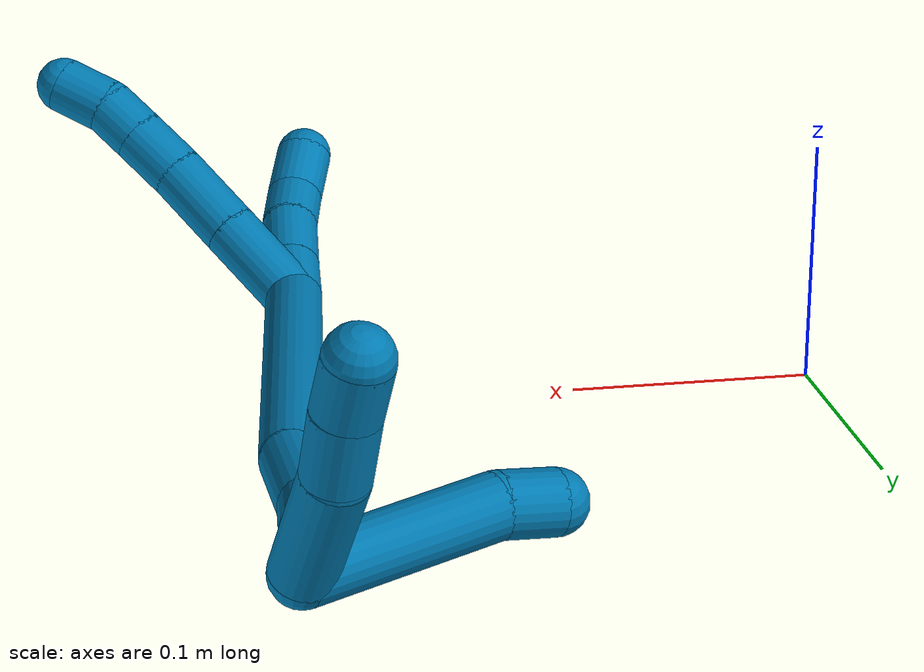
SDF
<sdf version="1.7">
 <world name="default">
  <model name="9">
   <static>0</static>
   <link name="9">
    <collision name="collision-cylinder-e_1_2_8">
     <pose>0.020557 -0.005449 0.00408 0.92814 1.25103 0.693792</pose>
     <geometry><cylinder><radius>0.0125</radius><length>0.043309</length></cylinder></geometry>
     <surface>
      <friction><ode><mu>1.16</mu><mu2>1.16</mu2><slip1>0</slip1><slip2>0</slip2></ode></friction>
      <contact><ode><kp>1e+06</kp><kd>1</kd><max_vel>0</max_vel><min_depth>0.001</min_depth></ode></contact>
     </surface>
    </collision>
    <visual name="visual-cylinder-e_1_2_8">
     <pose>0.020557 -0.005449 0.00408 0.92814 1.25103 0.693792</pose>
     <geometry><cylinder><radius>0.0125</radius><length>0.043309</length></cylinder></geometry>
     <material><ambient>0 0.490196 0.709804 1</ambient></material>
    </visual>
    <collision name="collision-cylinder-e_2_8_9">
     <pose>0.058778 -0.015846 0.011391 0.992162 1.24794 0.743084</pose>
     <geometry><cylinder><radius>0.0125</radius><length>0.037254</length></cylinder></geometry>
     <surface>
      <friction><ode><mu>1.16</mu><mu2>1.16</mu2><slip1>0</slip1><slip2>0</slip2></ode></friction>
      <contact><ode><kp>1e+06</kp><kd>1</kd><max_vel>0</max_vel><min_depth>0.001</min_depth></ode></contact>
     </surface>
    </collision>
    <visual name="visual-cylinder-e_2_8_9">
     <pose>0.058778 -0.015846 0.011391 0.992162 1.24794 0.743084</pose>
     <geometry><cylinder><radius>0.0125</radius><length>0.037254</length></cylinder></geometry>
     <material><ambient>0 0.490196 0.709804 1</ambient></material>
    </visual>
    <collision name="collision-cylinder-e_3_9_10">
     <pose>0.088734 -0.02316 0.017143 0.754065 1.29667 0.582882</pose>
     <geometry><cylinder><radius>0.0125</radius><length>0.025536</length></cylinder></geometry>
     <surface>
      <friction><ode><mu>1.16</mu><mu2>1.16</mu2><slip1>0</slip1><slip2>0</slip2></ode></friction>
      <contact><ode><kp>1e+06</kp><kd>1</kd><max_vel>0</max_vel><min_depth>0.001</min_depth></ode></contact>
     </surface>
    </collision>
    <visual name="visual-cylinder-e_3_9_10">
     <pose>0.088734 -0.02316 0.017143 0.754065 1.29667 0.582882</pose>
     <geometry><cylinder><radius>0.0125</radius><length>0.025536</length></cylinder></geometry>
     <material><ambient>0 0.490196 0.709804 1</ambient></material>
    </visual>
    <collision name="collision-cylinder-e_4_10_11">
     <pose>0.110836 -0.027173 0.021816 0.652844 1.3012 0.504375</pose>
     <geometry><cylinder><radius>0.0125</radius><length>0.020357</length></cylinder></geometry>
     <surface>
      <friction><ode><mu>1.16</mu><mu2>1.16</mu2><slip1>0</slip1><slip2>0</slip2></ode></friction>
      <contact><ode><kp>1e+06</kp><kd>1</kd><max_vel>0</max_vel><min_depth>0.001</min_depth></ode></contact>
     </surface>
    </collision>
    <visual name="visual-cylinder-e_4_10_11">
     <pose>0.110836 -0.027173 0.021816 0.652844 1.3012 0.504375</pose>
     <geometry><cylinder><radius>0.0125</radius><length>0.020357</length></cylinder></geometry>
     <material><ambient>0 0.490196 0.709804 1</ambient></material>
    </visual>
    <collision name="collision-cylinder-e_5_11_6">
     <pose>0.132388 -0.028125 0.024468 -0.947921 1.49808 -0.890081</pose>
     <geometry><cylinder><radius>0.0125</radius><length>0.023544</length></cylinder></geometry>
     <surface>
      <friction><ode><mu>1.16</mu><mu2>1.16</mu2><slip1>0</slip1><slip2>0</slip2></ode></friction>
      <contact><ode><kp>1e+06</kp><kd>1</kd><max_vel>0</max_vel><min_depth>0.001</min_depth></ode></contact>
     </surface>
    </collision>
    <visual name="visual-cylinder-e_5_11_6">
     <pose>0.132388 -0.028125 0.024468 -0.947921 1.49808 -0.890081</pose>
     <geometry><cylinder><radius>0.0125</radius><length>0.023544</length></cylinder></geometry>
     <material><ambient>0 0.490196 0.709804 1</ambient></material>
    </visual>
    <collision name="collision-cylinder-e_1_2_12">
     <pose>0.006546 -0.009909 -0.002019 1.77178 0.574451 0.694017</pose>
     <geometry><cylinder><radius>0.0125</radius><length>0.024093</length></cylinder></geometry>
     <surface>
      <friction><ode><mu>1.16</mu><mu2>1.16</mu2><slip1>0</slip1><slip2>0</slip2></ode></friction>
      <contact><ode><kp>1e+06</kp><kd>1</kd><max_vel>0</max_vel><min_depth>0.001</min_depth></ode></contact>
     </surface>
    </collision>
    <visual name="visual-cylinder-e_1_2_12">
     <pose>0.006546 -0.009909 -0.002019 1.77178 0.574451 0.694017</pose>
     <geometry><cylinder><radius>0.0125</radius><length>0.024093</length></cylinder></geometry>
     <material><ambient>0 0.490196 0.709804 1</ambient></material>
    </visual>
    <collision name="collision-cylinder-e_2_12_13">
     <pose>0.020873 -0.031785 -0.005144 1.66296 0.574631 0.626765</pose>
     <geometry><cylinder><radius>0.0125</radius><length>0.028632</length></cylinder></geometry>
     <surface>
      <friction><ode><mu>1.16</mu><mu2>1.16</mu2><slip1>0</slip1><slip2>0</slip2></ode></friction>
      <contact><ode><kp>1e+06</kp><kd>1</kd><max_vel>0</max_vel><min_depth>0.001</min_depth></ode></contact>
     </surface>
    </collision>
    <visual name="visual-cylinder-e_2_12_13">
     <pose>0.020873 -0.031785 -0.005144 1.66296 0.574631 0.626765</pose>
     <geometry><cylinder><radius>0.0125</radius><length>0.028632</length></cylinder></geometry>
     <material><ambient>0 0.490196 0.709804 1</ambient></material>
    </visual>
    <collision name="collision-cylinder-e_3_13_14">
     <pose>0.033399 -0.053746 -0.007536 1.69878 0.440015 0.49795</pose>
     <geometry><cylinder><radius>0.0125</radius><length>0.022278</length></cylinder></geometry>
     <surface>
      <friction><ode><mu>1.16</mu><mu2>1.16</mu2><slip1>0</slip1><slip2>0</slip2></ode></friction>
      <contact><ode><kp>1e+06</kp><kd>1</kd><max_vel>0</max_vel><min_depth>0.001</min_depth></ode></contact>
     </surface>
    </collision>
    <visual name="visual-cylinder-e_3_13_14">
     <pose>0.033399 -0.053746 -0.007536 1.69878 0.440015 0.49795</pose>
     <geometry><cylinder><radius>0.0125</radius><length>0.022278</length></cylinder></geometry>
     <material><ambient>0 0.490196 0.709804 1</ambient></material>
    </visual>
    <collision name="collision-cylinder-e_4_14_5">
     <pose>0.042907 -0.075071 -0.00655 1.37289 0.39104 0.32175</pose>
     <geometry><cylinder><radius>0.0125</radius><length>0.024997</length></cylinder></geometry>
     <surface>
      <friction><ode><mu>1.16</mu><mu2>1.16</mu2><slip1>0</slip1><slip2>0</slip2></ode></friction>
      <contact><ode><kp>1e+06</kp><kd>1</kd><max_vel>0</max_vel><min_depth>0.001</min_depth></ode></contact>
     </surface>
    </collision>
    <visual name="visual-cylinder-e_4_14_5">
     <pose>0.042907 -0.075071 -0.00655 1.37289 0.39104 0.32175</pose>
     <geometry><cylinder><radius>0.0125</radius><length>0.024997</length></cylinder></geometry>
     <material><ambient>0 0.490196 0.709804 1</ambient></material>
    </visual>
    <collision name="collision-cylinder-e_1_2_15">
     <pose>-0.038444 0.07095 0.037814 -1.08112 -0.446032 0.270571</pose>
     <geometry><cylinder><radius>0.0125</radius><length>0.178232</length></cylinder></geometry>
     <surface>
      <friction><ode><mu>1.16</mu><mu2>1.16</mu2><slip1>0</slip1><slip2>0</slip2></ode></friction>
      <contact><ode><kp>1e+06</kp><kd>1</kd><max_vel>0</max_vel><min_depth>0.001</min_depth></ode></contact>
     </surface>
    </collision>
    <visual name="visual-cylinder-e_1_2_15">
     <pose>-0.038444 0.07095 0.037814 -1.08112 -0.446032 0.270571</pose>
     <geometry><cylinder><radius>0.0125</radius><length>0.178232</length></cylinder></geometry>
     <material><ambient>0 0.490196 0.709804 1</ambient></material>
    </visual>
    <collision name="collision-cylinder-e_2_15_16">
     <pose>-0.089293 0.156923 0.084886 -1.01849 -0.612706 0.349632</pose>
     <geometry><cylinder><radius>0.0125</radius><length>0.043143</length></cylinder></geometry>
     <surface>
      <friction><ode><mu>1.16</mu><mu2>1.16</mu2><slip1>0</slip1><slip2>0</slip2></ode></friction>
      <contact><ode><kp>1e+06</kp><kd>1</kd><max_vel>0</max_vel><min_depth>0.001</min_depth></ode></contact>
     </surface>
    </collision>
    <visual name="visual-cylinder-e_2_15_16">
     <pose>-0.089293 0.156923 0.084886 -1.01849 -0.612706 0.349632</pose>
     <geometry><cylinder><radius>0.0125</radius><length>0.043143</length></cylinder></geometry>
     <material><ambient>0 0.490196 0.709804 1</ambient></material>
    </visual>
    <collision name="collision-cylinder-e_3_16_17">
     <pose>-0.109041 0.185423 0.10549 -0.871076 -0.394921 0.185664</pose>
     <geometry><cylinder><radius>0.0125</radius><length>0.03817</length></cylinder></geometry>
     <surface>
      <friction><ode><mu>1.16</mu><mu2>1.16</mu2><slip1>0</slip1><slip2>0</slip2></ode></friction>
      <contact><ode><kp>1e+06</kp><kd>1</kd><max_vel>0</max_vel><min_depth>0.001</min_depth></ode></contact>
     </surface>
    </collision>
    <visual name="visual-cylinder-e_3_16_17">
     <pose>-0.109041 0.185423 0.10549 -0.871076 -0.394921 0.185664</pose>
     <geometry><cylinder><radius>0.0125</radius><length>0.03817</length></cylinder></geometry>
     <material><ambient>0 0.490196 0.709804 1</ambient></material>
    </visual>
    <collision name="collision-cylinder-e_4_17_18">
     <pose>-0.120832 0.206443 0.121975 -0.97264 -0.453447 0.242719</pose>
     <geometry><cylinder><radius>0.0125</radius><length>0.020309</length></cylinder></geometry>
     <surface>
      <friction><ode><mu>1.16</mu><mu2>1.16</mu2><slip1>0</slip1><slip2>0</slip2></ode></friction>
      <contact><ode><kp>1e+06</kp><kd>1</kd><max_vel>0</max_vel><min_depth>0.001</min_depth></ode></contact>
     </surface>
    </collision>
    <visual name="visual-cylinder-e_4_17_18">
     <pose>-0.120832 0.206443 0.121975 -0.97264 -0.453447 0.242719</pose>
     <geometry><cylinder><radius>0.0125</radius><length>0.020309</length></cylinder></geometry>
     <material><ambient>0 0.490196 0.709804 1</ambient></material>
    </visual>
    <collision name="collision-cylinder-e_5_18_1">
     <pose>-0.127368 0.222757 0.131608 -1.09733 -0.20882 0.127936</pose>
     <geometry><cylinder><radius>0.0125</radius><length>0.020146</length></cylinder></geometry>
     <surface>
      <friction><ode><mu>1.16</mu><mu2>1.16</mu2><slip1>0</slip1><slip2>0</slip2></ode></friction>
      <contact><ode><kp>1e+06</kp><kd>1</kd><max_vel>0</max_vel><min_depth>0.001</min_depth></ode></contact>
     </surface>
    </collision>
    <visual name="visual-cylinder-e_5_18_1">
     <pose>-0.127368 0.222757 0.131608 -1.09733 -0.20882 0.127936</pose>
     <geometry><cylinder><radius>0.0125</radius><length>0.020146</length></cylinder></geometry>
     <material><ambient>0 0.490196 0.709804 1</ambient></material>
    </visual>
    <collision name="collision-cylinder-e_1_1_19">
     <pose>-0.131643 0.230331 0.16147 0.047108 -0.085885 -0.002025</pose>
     <geometry><cylinder><radius>0.0125</radius><length>0.05098</length></cylinder></geometry>
     <surface>
      <friction><ode><mu>1.16</mu><mu2>1.16</mu2><slip1>0</slip1><slip2>0</slip2></ode></friction>
      <contact><ode><kp>1e+06</kp><kd>1</kd><max_vel>0</max_vel><min_depth>0.001</min_depth></ode></contact>
     </surface>
    </collision>
    <visual name="visual-cylinder-e_1_1_19">
     <pose>-0.131643 0.230331 0.16147 0.047108 -0.085885 -0.002025</pose>
     <geometry><cylinder><radius>0.0125</radius><length>0.05098</length></cylinder></geometry>
     <material><ambient>0 0.490196 0.709804 1</ambient></material>
    </visual>
    <collision name="collision-cylinder-e_2_19_20">
     <pose>-0.132863 0.227473 0.200227 0.123503 0.071504 0.004423</pose>
     <geometry><cylinder><radius>0.0125</radius><length>0.027053</length></cylinder></geometry>
     <surface>
      <friction><ode><mu>1.16</mu><mu2>1.16</mu2><slip1>0</slip1><slip2>0</slip2></ode></friction>
      <contact><ode><kp>1e+06</kp><kd>1</kd><max_vel>0</max_vel><min_depth>0.001</min_depth></ode></contact>
     </surface>
    </collision>
    <visual name="visual-cylinder-e_2_19_20">
     <pose>-0.132863 0.227473 0.200227 0.123503 0.071504 0.004423</pose>
     <geometry><cylinder><radius>0.0125</radius><length>0.027053</length></cylinder></geometry>
     <material><ambient>0 0.490196 0.709804 1</ambient></material>
    </visual>
    <collision name="collision-cylinder-e_3_20_4">
     <pose>-0.131669 0.224242 0.224485 0.143376 0.020759 0.001491</pose>
     <geometry><cylinder><radius>0.0125</radius><length>0.021967</length></cylinder></geometry>
     <surface>
      <friction><ode><mu>1.16</mu><mu2>1.16</mu2><slip1>0</slip1><slip2>0</slip2></ode></friction>
      <contact><ode><kp>1e+06</kp><kd>1</kd><max_vel>0</max_vel><min_depth>0.001</min_depth></ode></contact>
     </surface>
    </collision>
    <visual name="visual-cylinder-e_3_20_4">
     <pose>-0.131669 0.224242 0.224485 0.143376 0.020759 0.001491</pose>
     <geometry><cylinder><radius>0.0125</radius><length>0.021967</length></cylinder></geometry>
     <material><ambient>0 0.490196 0.709804 1</ambient></material>
    </visual>
    <collision name="collision-cylinder-e_1_1_21">
     <pose>-0.149091 0.198297 0.1363 1.56484 -0.533674 -0.530654</pose>
     <geometry><cylinder><radius>0.0125</radius><length>0.077196</length></cylinder></geometry>
     <surface>
      <friction><ode><mu>1.16</mu><mu2>1.16</mu2><slip1>0</slip1><slip2>0</slip2></ode></friction>
      <contact><ode><kp>1e+06</kp><kd>1</kd><max_vel>0</max_vel><min_depth>0.001</min_depth></ode></contact>
     </surface>
    </collision>
    <visual name="visual-cylinder-e_1_1_21">
     <pose>-0.149091 0.198297 0.1363 1.56484 -0.533674 -0.530654</pose>
     <geometry><cylinder><radius>0.0125</radius><length>0.077196</length></cylinder></geometry>
     <material><ambient>0 0.490196 0.709804 1</ambient></material>
    </visual>
    <collision name="collision-cylinder-e_2_21_3">
     <pose>-0.17626 0.156678 0.134804 1.76997 -0.721808 -0.864312</pose>
     <geometry><cylinder><radius>0.0125</radius><length>0.022804</length></cylinder></geometry>
     <surface>
      <friction><ode><mu>1.16</mu><mu2>1.16</mu2><slip1>0</slip1><slip2>0</slip2></ode></friction>
      <contact><ode><kp>1e+06</kp><kd>1</kd><max_vel>0</max_vel><min_depth>0.001</min_depth></ode></contact>
     </surface>
    </collision>
    <visual name="visual-cylinder-e_2_21_3">
     <pose>-0.17626 0.156678 0.134804 1.76997 -0.721808 -0.864312</pose>
     <geometry><cylinder><radius>0.0125</radius><length>0.022804</length></cylinder></geometry>
     <material><ambient>0 0.490196 0.709804 1</ambient></material>
    </visual>
    <collision name="collision-sphere-3">
     <pose>-0.183794 0.148288 0.133111 0 -0 0</pose>
     <geometry><sphere><radius>0.0125</radius></sphere></geometry>
     <surface>
      <friction><ode><mu>1.16</mu><mu2>1.16</mu2><slip1>0</slip1><slip2>0</slip2></ode></friction>
      <contact><ode><kp>1e+06</kp><kd>1</kd><max_vel>0</max_vel><min_depth>0.001</min_depth></ode></contact>
     </surface>
    </collision>
    <visual name="visual-sphere-3">
     <pose>-0.183794 0.148288 0.133111 0 -0 0</pose>
     <geometry><sphere><radius>0.0125</radius></sphere></geometry>
     <material><ambient>0 0.490196 0.709804 1</ambient></material>
    </visual>
    <collision name="collision-sphere-21">
     <pose>-0.168726 0.165067 0.136497 0 -0 0</pose>
     <geometry><sphere><radius>0.0125</radius></sphere></geometry>
     <surface>
      <friction><ode><mu>1.16</mu><mu2>1.16</mu2><slip1>0</slip1><slip2>0</slip2></ode></friction>
      <contact><ode><kp>1e+06</kp><kd>1</kd><max_vel>0</max_vel><min_depth>0.001</min_depth></ode></contact>
     </surface>
    </collision>
    <visual name="visual-sphere-21">
     <pose>-0.168726 0.165067 0.136497 0 -0 0</pose>
     <geometry><sphere><radius>0.0125</radius></sphere></geometry>
     <material><ambient>0 0.490196 0.709804 1</ambient></material>
    </visual>
    <collision name="collision-sphere-4">
     <pose>-0.131441 0.222673 0.235353 0 -0 0</pose>
     <geometry><sphere><radius>0.0125</radius></sphere></geometry>
     <surface>
      <friction><ode><mu>1.16</mu><mu2>1.16</mu2><slip1>0</slip1><slip2>0</slip2></ode></friction>
      <contact><ode><kp>1e+06</kp><kd>1</kd><max_vel>0</max_vel><min_depth>0.001</min_depth></ode></contact>
     </surface>
    </collision>
    <visual name="visual-sphere-4">
     <pose>-0.131441 0.222673 0.235353 0 -0 0</pose>
     <geometry><sphere><radius>0.0125</radius></sphere></geometry>
     <material><ambient>0 0.490196 0.709804 1</ambient></material>
    </visual>
    <collision name="collision-sphere-20">
     <pose>-0.131897 0.225811 0.213616 0 -0 0</pose>
     <geometry><sphere><radius>0.0125</radius></sphere></geometry>
     <surface>
      <friction><ode><mu>1.16</mu><mu2>1.16</mu2><slip1>0</slip1><slip2>0</slip2></ode></friction>
      <contact><ode><kp>1e+06</kp><kd>1</kd><max_vel>0</max_vel><min_depth>0.001</min_depth></ode></contact>
     </surface>
    </collision>
    <visual name="visual-sphere-20">
     <pose>-0.131897 0.225811 0.213616 0 -0 0</pose>
     <geometry><sphere><radius>0.0125</radius></sphere></geometry>
     <material><ambient>0 0.490196 0.709804 1</ambient></material>
    </visual>
    <collision name="collision-sphere-6">
     <pose>0.144129 -0.027431 0.024967 0 -0 0</pose>
     <geometry><sphere><radius>0.0125</radius></sphere></geometry>
     <surface>
      <friction><ode><mu>1.16</mu><mu2>1.16</mu2><slip1>0</slip1><slip2>0</slip2></ode></friction>
      <contact><ode><kp>1e+06</kp><kd>1</kd><max_vel>0</max_vel><min_depth>0.001</min_depth></ode></contact>
     </surface>
    </collision>
    <visual name="visual-sphere-6">
     <pose>0.144129 -0.027431 0.024967 0 -0 0</pose>
     <geometry><sphere><radius>0.0125</radius></sphere></geometry>
     <material><ambient>0 0.490196 0.709804 1</ambient></material>
    </visual>
    <collision name="collision-sphere-11">
     <pose>0.120647 -0.02882 0.023969 0 -0 0</pose>
     <geometry><sphere><radius>0.0125</radius></sphere></geometry>
     <surface>
      <friction><ode><mu>1.16</mu><mu2>1.16</mu2><slip1>0</slip1><slip2>0</slip2></ode></friction>
      <contact><ode><kp>1e+06</kp><kd>1</kd><max_vel>0</max_vel><min_depth>0.001</min_depth></ode></contact>
     </surface>
    </collision>
    <visual name="visual-sphere-11">
     <pose>0.120647 -0.02882 0.023969 0 -0 0</pose>
     <geometry><sphere><radius>0.0125</radius></sphere></geometry>
     <material><ambient>0 0.490196 0.709804 1</ambient></material>
    </visual>
    <collision name="collision-sphere-10">
     <pose>0.101025 -0.025526 0.019662 0 -0 0</pose>
     <geometry><sphere><radius>0.0125</radius></sphere></geometry>
     <surface>
      <friction><ode><mu>1.16</mu><mu2>1.16</mu2><slip1>0</slip1><slip2>0</slip2></ode></friction>
      <contact><ode><kp>1e+06</kp><kd>1</kd><max_vel>0</max_vel><min_depth>0.001</min_depth></ode></contact>
     </surface>
    </collision>
    <visual name="visual-sphere-10">
     <pose>0.101025 -0.025526 0.019662 0 -0 0</pose>
     <geometry><sphere><radius>0.0125</radius></sphere></geometry>
     <material><ambient>0 0.490196 0.709804 1</ambient></material>
    </visual>
    <collision name="collision-sphere-9">
     <pose>0.076443 -0.020794 0.014623 0 -0 0</pose>
     <geometry><sphere><radius>0.0125</radius></sphere></geometry>
     <surface>
      <friction><ode><mu>1.16</mu><mu2>1.16</mu2><slip1>0</slip1><slip2>0</slip2></ode></friction>
      <contact><ode><kp>1e+06</kp><kd>1</kd><max_vel>0</max_vel><min_depth>0.001</min_depth></ode></contact>
     </surface>
    </collision>
    <visual name="visual-sphere-9">
     <pose>0.076443 -0.020794 0.014623 0 -0 0</pose>
     <geometry><sphere><radius>0.0125</radius></sphere></geometry>
     <material><ambient>0 0.490196 0.709804 1</ambient></material>
    </visual>
    <collision name="collision-sphere-2">
     <geometry><sphere><radius>0.0125</radius></sphere></geometry>
     <surface>
      <friction><ode><mu>1.16</mu><mu2>1.16</mu2><slip1>0</slip1><slip2>0</slip2></ode></friction>
      <contact><ode><kp>1e+06</kp><kd>1</kd><max_vel>0</max_vel><min_depth>0.001</min_depth></ode></contact>
     </surface>
    </collision>
    <visual name="visual-sphere-2">
     <geometry><sphere><radius>0.0125</radius></sphere></geometry>
     <material><ambient>0 0.490196 0.709804 1</ambient></material>
    </visual>
    <collision name="collision-sphere-19">
     <pose>-0.13383 0.229135 0.186838 0 -0 0</pose>
     <geometry><sphere><radius>0.0125</radius></sphere></geometry>
     <surface>
      <friction><ode><mu>1.16</mu><mu2>1.16</mu2><slip1>0</slip1><slip2>0</slip2></ode></friction>
      <contact><ode><kp>1e+06</kp><kd>1</kd><max_vel>0</max_vel><min_depth>0.001</min_depth></ode></contact>
     </surface>
    </collision>
    <visual name="visual-sphere-19">
     <pose>-0.13383 0.229135 0.186838 0 -0 0</pose>
     <geometry><sphere><radius>0.0125</radius></sphere></geometry>
     <material><ambient>0 0.490196 0.709804 1</ambient></material>
    </visual>
    <collision name="collision-sphere-8">
     <pose>0.041114 -0.010898 0.008159 0 -0 0</pose>
     <geometry><sphere><radius>0.0125</radius></sphere></geometry>
     <surface>
      <friction><ode><mu>1.16</mu><mu2>1.16</mu2><slip1>0</slip1><slip2>0</slip2></ode></friction>
      <contact><ode><kp>1e+06</kp><kd>1</kd><max_vel>0</max_vel><min_depth>0.001</min_depth></ode></contact>
     </surface>
    </collision>
    <visual name="visual-sphere-8">
     <pose>0.041114 -0.010898 0.008159 0 -0 0</pose>
     <geometry><sphere><radius>0.0125</radius></sphere></geometry>
     <material><ambient>0 0.490196 0.709804 1</ambient></material>
    </visual>
    <collision name="collision-sphere-12">
     <pose>0.013092 -0.019819 -0.004038 0 -0 0</pose>
     <geometry><sphere><radius>0.0125</radius></sphere></geometry>
     <surface>
      <friction><ode><mu>1.16</mu><mu2>1.16</mu2><slip1>0</slip1><slip2>0</slip2></ode></friction>
      <contact><ode><kp>1e+06</kp><kd>1</kd><max_vel>0</max_vel><min_depth>0.001</min_depth></ode></contact>
     </surface>
    </collision>
    <visual name="visual-sphere-12">
     <pose>0.013092 -0.019819 -0.004038 0 -0 0</pose>
     <geometry><sphere><radius>0.0125</radius></sphere></geometry>
     <material><ambient>0 0.490196 0.709804 1</ambient></material>
    </visual>
    <collision name="collision-sphere-13">
     <pose>0.028654 -0.04375 -0.00625 0 -0 0</pose>
     <geometry><sphere><radius>0.0125</radius></sphere></geometry>
     <surface>
      <friction><ode><mu>1.16</mu><mu2>1.16</mu2><slip1>0</slip1><slip2>0</slip2></ode></friction>
      <contact><ode><kp>1e+06</kp><kd>1</kd><max_vel>0</max_vel><min_depth>0.001</min_depth></ode></contact>
     </surface>
    </collision>
    <visual name="visual-sphere-13">
     <pose>0.028654 -0.04375 -0.00625 0 -0 0</pose>
     <geometry><sphere><radius>0.0125</radius></sphere></geometry>
     <material><ambient>0 0.490196 0.709804 1</ambient></material>
    </visual>
    <collision name="collision-sphere-14">
     <pose>0.038143 -0.063742 -0.008822 0 -0 0</pose>
     <geometry><sphere><radius>0.0125</radius></sphere></geometry>
     <surface>
      <friction><ode><mu>1.16</mu><mu2>1.16</mu2><slip1>0</slip1><slip2>0</slip2></ode></friction>
      <contact><ode><kp>1e+06</kp><kd>1</kd><max_vel>0</max_vel><min_depth>0.001</min_depth></ode></contact>
     </surface>
    </collision>
    <visual name="visual-sphere-14">
     <pose>0.038143 -0.063742 -0.008822 0 -0 0</pose>
     <geometry><sphere><radius>0.0125</radius></sphere></geometry>
     <material><ambient>0 0.490196 0.709804 1</ambient></material>
    </visual>
    <collision name="collision-sphere-5">
     <pose>0.047671 -0.0864 -0.004278 0 -0 0</pose>
     <geometry><sphere><radius>0.0125</radius></sphere></geometry>
     <surface>
      <friction><ode><mu>1.16</mu><mu2>1.16</mu2><slip1>0</slip1><slip2>0</slip2></ode></friction>
      <contact><ode><kp>1e+06</kp><kd>1</kd><max_vel>0</max_vel><min_depth>0.001</min_depth></ode></contact>
     </surface>
    </collision>
    <visual name="visual-sphere-5">
     <pose>0.047671 -0.0864 -0.004278 0 -0 0</pose>
     <geometry><sphere><radius>0.0125</radius></sphere></geometry>
     <material><ambient>0 0.490196 0.709804 1</ambient></material>
    </visual>
    <collision name="collision-sphere-15">
     <pose>-0.076887 0.1419 0.075628 0 -0 0</pose>
     <geometry><sphere><radius>0.0125</radius></sphere></geometry>
     <surface>
      <friction><ode><mu>1.16</mu><mu2>1.16</mu2><slip1>0</slip1><slip2>0</slip2></ode></friction>
      <contact><ode><kp>1e+06</kp><kd>1</kd><max_vel>0</max_vel><min_depth>0.001</min_depth></ode></contact>
     </surface>
    </collision>
    <visual name="visual-sphere-15">
     <pose>-0.076887 0.1419 0.075628 0 -0 0</pose>
     <geometry><sphere><radius>0.0125</radius></sphere></geometry>
     <material><ambient>0 0.490196 0.709804 1</ambient></material>
    </visual>
    <collision name="collision-sphere-16">
     <pose>-0.101698 0.171947 0.094145 0 -0 0</pose>
     <geometry><sphere><radius>0.0125</radius></sphere></geometry>
     <surface>
      <friction><ode><mu>1.16</mu><mu2>1.16</mu2><slip1>0</slip1><slip2>0</slip2></ode></friction>
      <contact><ode><kp>1e+06</kp><kd>1</kd><max_vel>0</max_vel><min_depth>0.001</min_depth></ode></contact>
     </surface>
    </collision>
    <visual name="visual-sphere-16">
     <pose>-0.101698 0.171947 0.094145 0 -0 0</pose>
     <geometry><sphere><radius>0.0125</radius></sphere></geometry>
     <material><ambient>0 0.490196 0.709804 1</ambient></material>
    </visual>
    <collision name="collision-sphere-17">
     <pose>-0.116383 0.1989 0.116835 0 -0 0</pose>
     <geometry><sphere><radius>0.0125</radius></sphere></geometry>
     <surface>
      <friction><ode><mu>1.16</mu><mu2>1.16</mu2><slip1>0</slip1><slip2>0</slip2></ode></friction>
      <contact><ode><kp>1e+06</kp><kd>1</kd><max_vel>0</max_vel><min_depth>0.001</min_depth></ode></contact>
     </surface>
    </collision>
    <visual name="visual-sphere-17">
     <pose>-0.116383 0.1989 0.116835 0 -0 0</pose>
     <geometry><sphere><radius>0.0125</radius></sphere></geometry>
     <material><ambient>0 0.490196 0.709804 1</ambient></material>
    </visual>
    <collision name="collision-sphere-18">
     <pose>-0.12528 0.213987 0.127115 0 -0 0</pose>
     <geometry><sphere><radius>0.0125</radius></sphere></geometry>
     <surface>
      <friction><ode><mu>1.16</mu><mu2>1.16</mu2><slip1>0</slip1><slip2>0</slip2></ode></friction>
      <contact><ode><kp>1e+06</kp><kd>1</kd><max_vel>0</max_vel><min_depth>0.001</min_depth></ode></contact>
     </surface>
    </collision>
    <visual name="visual-sphere-18">
     <pose>-0.12528 0.213987 0.127115 0 -0 0</pose>
     <geometry><sphere><radius>0.0125</radius></sphere></geometry>
     <material><ambient>0 0.490196 0.709804 1</ambient></material>
    </visual>
    <collision name="collision-sphere-1">
     <pose>-0.129457 0.231527 0.136102 0 -0 0</pose>
     <geometry><sphere><radius>0.0125</radius></sphere></geometry>
     <surface>
      <friction><ode><mu>1.16</mu><mu2>1.16</mu2><slip1>0</slip1><slip2>0</slip2></ode></friction>
      <contact><ode><kp>1e+06</kp><kd>1</kd><max_vel>0</max_vel><min_depth>0.001</min_depth></ode></contact>
     </surface>
    </collision>
    <visual name="visual-sphere-1">
     <pose>-0.129457 0.231527 0.136102 0 -0 0</pose>
     <geometry><sphere><radius>0.0125</radius></sphere></geometry>
     <material><ambient>0 0.490196 0.709804 1</ambient></material>
    </visual>
    <inertial>
     <pose>-0.047096 0.093361 0.071019 0 -0 0</pose>
     <mass>0.75</mass>
     <inertia>
      <ixx>0.000599</ixx>
      <ixy>0</ixy>
      <ixz>0</ixz>
      <iyy>0.000437</iyy>
      <iyz>0</iyz>
      <izz>-0.000109</izz>
     </inertia>
    </inertial>
   </link>
   <pose>0.204404 -0.098294 0.011726 -0.32281 -0.331261 -0.604725</pose>
  </model>
 </world>
</sdf>
